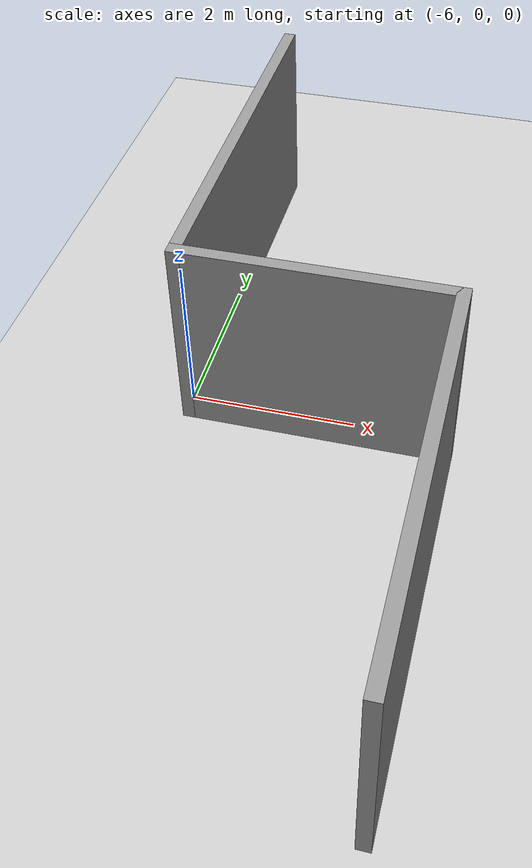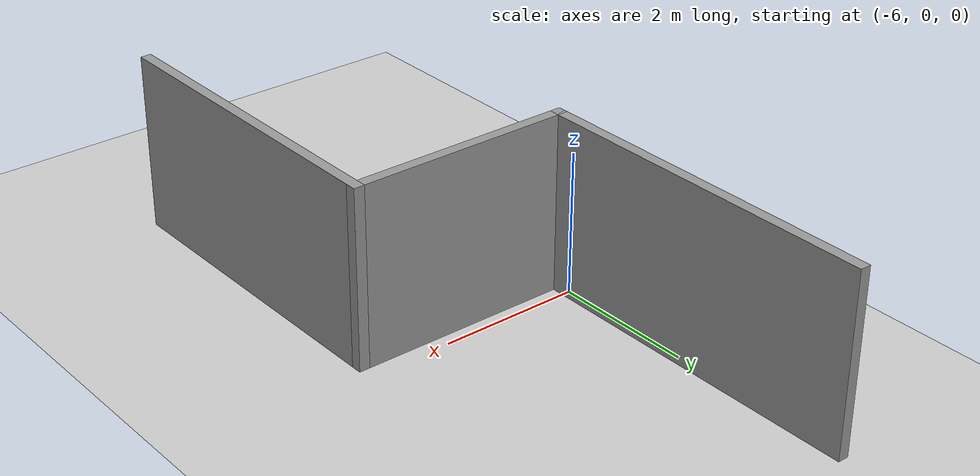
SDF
<?xml version="1.0"?>
<sdf version="1.6">
  <world name="default">

    <include>
      <uri>model://ground_plane</uri>
    </include>

    <include>
      <uri>model://sun</uri>
    </include>

    <scene>
      <shadows>false</shadows>
    </scene>

    <gui fullscreen='0'>
      <camera name='user_camera'>
        <pose frame=''>0.319654 -0.235002 9.29441 0 1.5138 0.009599</pose>
        <view_controller>orbit</view_controller>
        <projection_type>perspective</projection_type>
      </camera>
    </gui>

    <physics type="ode">
      <real_time_update_rate>1000.0</real_time_update_rate>
      <max_step_size>0.001</max_step_size>
      <real_time_factor>1</real_time_factor>
      <ode>
        <solver>
          <type>quick</type>
          <iters>150</iters>
          <precon_iters>0</precon_iters>
          <sor>1.400000</sor>
          <use_dynamic_moi_rescaling>1</use_dynamic_moi_rescaling>
        </solver>
        <constraints>
          <cfm>0.00001</cfm>
          <erp>0.2</erp>
          <contact_max_correcting_vel>2000.000000</contact_max_correcting_vel>
          <contact_surface_layer>0.01000</contact_surface_layer>
        </constraints>
      </ode>
    </physics>

    <model name="wall">
      <static>1</static>
      <include>
        <uri>model://wall</uri>
      </include>
    </model>

  </world>
</sdf>

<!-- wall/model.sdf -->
<sdf version='1.7'>
  <model name='wall'>
    <pose>-3.01582 -0.124037 0 0 -0 0</pose>
    <link name='Wall_11'>
      <collision name='Wall_11_Collision'>
        <geometry>
          <box>
            <size>5 0.15 2.5</size>
          </box>
        </geometry>
        <pose>0 0 1.25 0 -0 0</pose>
      </collision>
      <visual name='Wall_11_Visual'>
        <pose>0 0 1.25 0 -0 0</pose>
        <geometry>
          <box>
            <size>5 0.15 2.5</size>
          </box>
        </geometry>
        <material>
          <script>
            <uri>file://media/materials/scripts/gazebo.material</uri>
            <name>Gazebo/Grey</name>
          </script>
          <ambient>1 1 1 1</ambient>
        </material>
        <meta>
          <layer>0</layer>
        </meta>
      </visual>
      <pose>-2.94082 2.3 0 0 -0 1.5708</pose>
    </link>
    <link name='Wall_5'>
      <collision name='Wall_5_Collision'>
        <geometry>
          <box>
            <size>4.75 0.15 2.5</size>
          </box>
        </geometry>
        <pose>0 0 1.25 0 -0 0</pose>
      </collision>
      <visual name='Wall_5_Visual'>
        <pose>0 0 1.25 0 -0 0</pose>
        <geometry>
          <box>
            <size>4.75 0.15 2.5</size>
          </box>
        </geometry>
        <material>
          <script>
            <uri>file://media/materials/scripts/gazebo.material</uri>
            <name>Gazebo/Grey</name>
          </script>
          <ambient>1 1 1 1</ambient>
        </material>
        <meta>
          <layer>0</layer>
        </meta>
      </visual>
      <pose>0.159178 -2.425 0 0 -0 1.5708</pose>
    </link>
    <link name='Wall_9'>
      <collision name='Wall_9_Collision'>
        <geometry>
          <box>
            <size>3.25 0.15 2.5</size>
          </box>
        </geometry>
        <pose>0 0 1.25 0 -0 0</pose>
      </collision>
      <visual name='Wall_9_Visual'>
        <pose>0 0 1.25 0 -0 0</pose>
        <geometry>
          <box>
            <size>3.25 0.15 2.5</size>
          </box>
        </geometry>
        <material>
          <script>
            <uri>file://media/materials/scripts/gazebo.material</uri>
            <name>Gazebo/Grey</name>
          </script>
          <ambient>1 1 1 1</ambient>
        </material>
        <meta>
          <layer>0</layer>
        </meta>
      </visual>
      <pose>-1.39082 -0.125 0 0 -0 3.14159</pose>
    </link>
    <static>1</static>
  </model>
</sdf>
